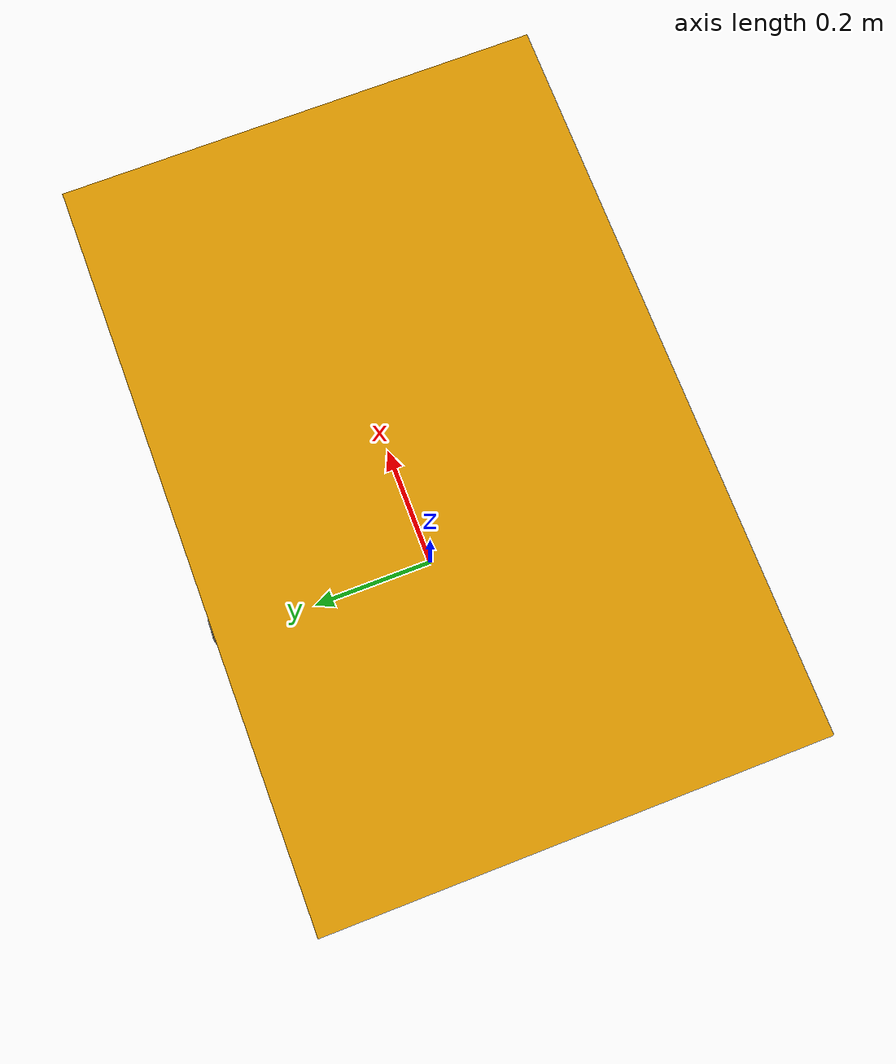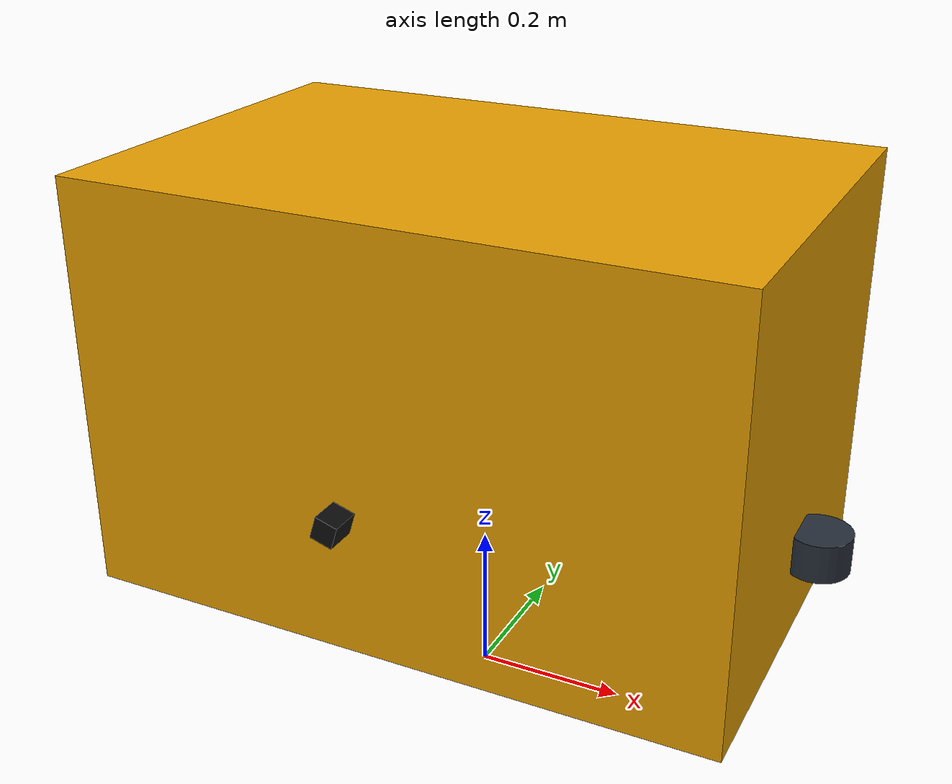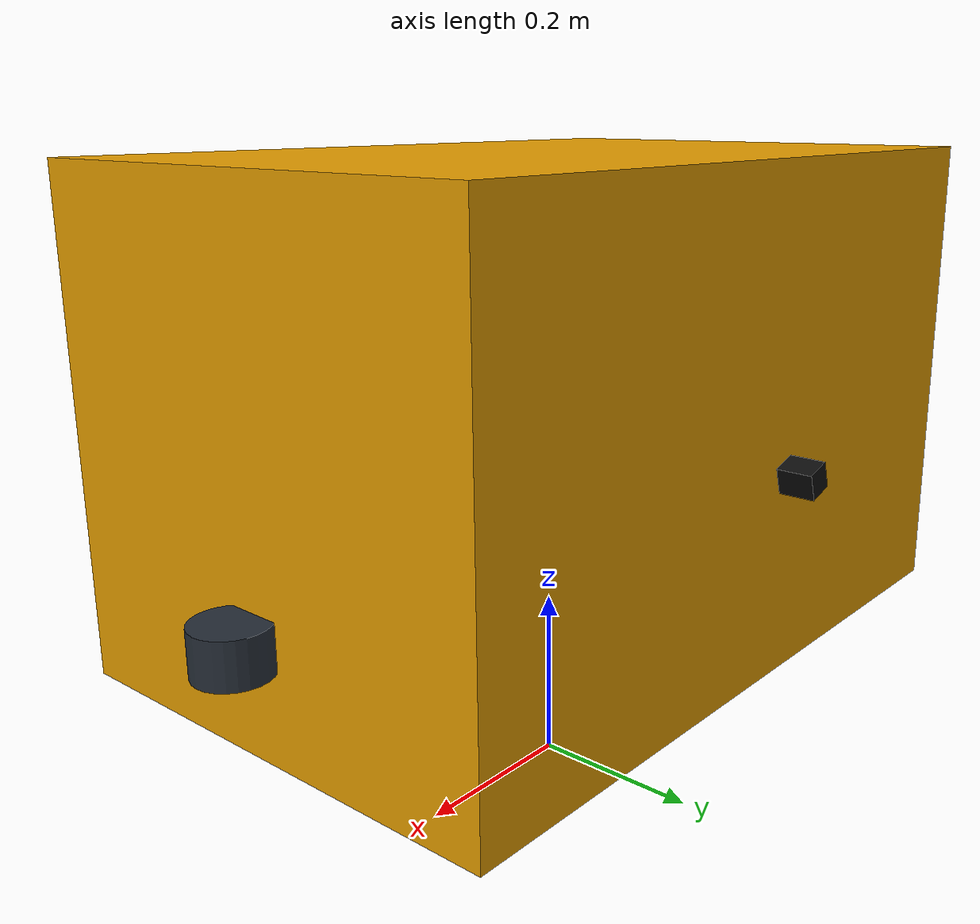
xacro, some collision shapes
<?xml version="1.0"?>
<robot name="wheelchair" xmlns:xacro="http://ros.org/wiki/xacro">

  <xacro:property name="mesh_scale" value="0.85"/>
  <xacro:property name="body_x"   value="0.85"/>
  <xacro:property name="body_y"   value="0.56"/>
  <xacro:property name="body_z"   value="0.55"/>
  <xacro:property name="body_zc"  value="0.45"/>
  <xacro:property name="wheel_r"  value="0.15"/>
  <xacro:property name="wheel_w"  value="0.07"/>
  <xacro:property name="wheel_sep" value="0.52"/>
  <xacro:property name="caster_x" value="0.33"/>
  <xacro:property name="PI" value="3.14159265359"/>

  <material name="chair">  <color rgba="0.15 0.18 0.22 1.0"/></material>
  <material name="rubber"> <color rgba="0.05 0.05 0.05 1.0"/></material>

  <link name="base_link">
    <visual>
      <origin xyz="0 0 0" rpy="0 0 0"/>
      <geometry>
        <mesh filename="model://PatientWheelChair/meshes/PatientWheelChair.obj"
              scale="${mesh_scale} ${mesh_scale} ${mesh_scale}"/>
      </geometry>
    </visual>
    <collision>
      <origin xyz="0 0 ${body_zc}" rpy="0 0 0"/>
      <geometry><box size="${body_x} ${body_y} ${body_z}"/></geometry>
    </collision>
    <inertial>
      <origin xyz="0 0 ${body_zc}" rpy="0 0 0"/>
      <mass value="80.0"/>
      <inertia ixx="6.0" ixy="0" ixz="0" iyy="9.0" iyz="0" izz="9.0"/>
    </inertial>
  </link>

  <xacro:macro name="drive_wheel" params="prefix y">
    <!-- Functional drive wheel: collision-only (the wheelchair mesh provides
         the visible wheels). Still rotated by the diff-drive plugin. -->
    <link name="${prefix}_wheel">
      <collision>
        <origin xyz="0 0 0" rpy="${PI/2} 0 0"/>
        <geometry><cylinder radius="${wheel_r}" length="${wheel_w}"/></geometry>
      </collision>
      <inertial><mass value="2.0"/>
        <inertia ixx="0.02" ixy="0" ixz="0" iyy="0.02" iyz="0" izz="0.03"/></inertial>
    </link>
    <joint name="${prefix}_wheel_joint" type="continuous">
      <parent link="base_link"/>
      <child link="${prefix}_wheel"/>
      <origin xyz="0 ${y} ${wheel_r}" rpy="0 0 0"/>
      <axis xyz="0 1 0"/>
    </joint>
  </xacro:macro>
  <xacro:drive_wheel prefix="left"  y="${ wheel_sep/2}"/>
  <xacro:drive_wheel prefix="right" y="${-wheel_sep/2}"/>

  <xacro:macro name="caster" params="prefix x">
    <link name="${prefix}_caster">
      <collision><geometry><sphere radius="${wheel_r}"/></geometry>
        <surface><friction><ode><mu>0.0</mu><mu2>0.0</mu2></ode></friction></surface></collision>
      <inertial><mass value="1.0"/>
        <inertia ixx="0.005" ixy="0" ixz="0" iyy="0.005" iyz="0" izz="0.005"/></inertial>
    </link>
    <joint name="${prefix}_caster_joint" type="fixed">
      <parent link="base_link"/><child link="${prefix}_caster"/>
      <origin xyz="${x} 0 ${wheel_r}" rpy="0 0 0"/>
    </joint>
  </xacro:macro>
  <xacro:caster prefix="front" x="${ caster_x}"/>
  <xacro:caster prefix="back"  x="${-caster_x}"/>

  <!-- ============ RGB-D cameras (gz rgbd_camera sensor) ============ -->
  <xacro:macro name="rgbd_camera" params="name x y z pitch hfov">
    <link name="${name}_link">
      <visual><geometry><box size="0.03 0.10 0.03"/></geometry><material name="rubber"/></visual>
      <inertial><mass value="0.1"/>
        <inertia ixx="1e-4" ixy="0" ixz="0" iyy="1e-4" iyz="0" izz="1e-4"/></inertial>
    </link>
    <joint name="${name}_joint" type="fixed">
      <parent link="base_link"/><child link="${name}_link"/>
      <origin xyz="${x} ${y} ${z}" rpy="0 ${pitch} 0"/>
    </joint>
    <link name="${name}_color_optical_frame"/>
    <joint name="${name}_optical_joint" type="fixed">
      <parent link="${name}_link"/><child link="${name}_color_optical_frame"/>
      <origin xyz="0 0 0" rpy="${-PI/2} 0 ${-PI/2}"/>
    </joint>
    <gazebo reference="${name}_link">
      <sensor name="${name}" type="rgbd_camera">
        <update_rate>10</update_rate>
        <always_on>1</always_on>
        <topic>${name}</topic>
        <ignition_frame_id>${name}_color_optical_frame</ignition_frame_id>
        <camera>
          <horizontal_fov>${hfov}</horizontal_fov>
          <image><width>424</width><height>240</height><format>R8G8B8</format></image>
          <clip><near>0.2</near><far>8.0</far></clip>
        </camera>
      </sensor>
    </gazebo>
  </xacro:macro>
  <xacro:rgbd_camera name="camera_01" x="-0.05" y="-0.27" z="0.36" pitch="0.30" hfov="1.20"/>
  <xacro:rgbd_camera name="camera_02" x="-0.05" y="0.27"  z="0.40" pitch="0.30" hfov="1.20"/>

  <!-- ============ 2D lidar (gz gpu_lidar) ============ -->
  <link name="lidar_link">
    <visual><geometry><cylinder radius="0.04" length="0.05"/></geometry><material name="chair"/></visual>
    <inertial><mass value="0.1"/>
      <inertia ixx="1e-4" ixy="0" ixz="0" iyy="1e-4" iyz="0" izz="1e-4"/></inertial>
  </link>
  <joint name="lidar_joint" type="fixed">
    <parent link="base_link"/><child link="lidar_link"/>
    <origin xyz="0.45 0 0.30" rpy="0 0 0"/>
  </joint>
  <gazebo reference="lidar_link">
    <sensor name="lidar" type="gpu_lidar">
      <update_rate>10</update_rate>
      <always_on>1</always_on>
      <topic>scan</topic>
      <ignition_frame_id>lidar_link</ignition_frame_id>
      <lidar>
        <scan><horizontal>
          <samples>360</samples><resolution>1</resolution>
          <min_angle>-3.14159</min_angle><max_angle>3.14159</max_angle>
        </horizontal></scan>
        <range><min>0.15</min><max>10.0</max><resolution>0.01</resolution></range>
      </lidar>
    </sensor>
  </gazebo>

  <!-- ============ Fortress system plugins ============ -->
  <gazebo>
    <plugin filename="ignition-gazebo-diff-drive-system"
            name="ignition::gazebo::systems::DiffDrive">
      <left_joint>left_wheel_joint</left_joint>
      <right_joint>right_wheel_joint</right_joint>
      <wheel_separation>${wheel_sep}</wheel_separation>
      <wheel_radius>${wheel_r}</wheel_radius>
      <max_linear_acceleration>2.0</max_linear_acceleration>
      <topic>/cmd_vel</topic>
      <odom_topic>/wheel_odom</odom_topic>
      <frame_id>odom</frame_id>
      <child_frame_id>base_link</child_frame_id>
      <odom_publish_frequency>50</odom_publish_frequency>
      <tf_topic>/tf_gz</tf_topic>
    </plugin>
    <plugin filename="ignition-gazebo-odometry-publisher-system"
            name="ignition::gazebo::systems::OdometryPublisher">
      <odom_frame>odom</odom_frame>
      <robot_base_frame>base_link</robot_base_frame>
      <odom_topic>/odom</odom_topic>
      <odom_publish_frequency>50</odom_publish_frequency>
      <dimensions>2</dimensions>
    </plugin>
    <plugin filename="ignition-gazebo-joint-state-publisher-system"
            name="ignition::gazebo::systems::JointStatePublisher">
      <topic>/joint_states</topic>
    </plugin>
  </gazebo>

</robot>
